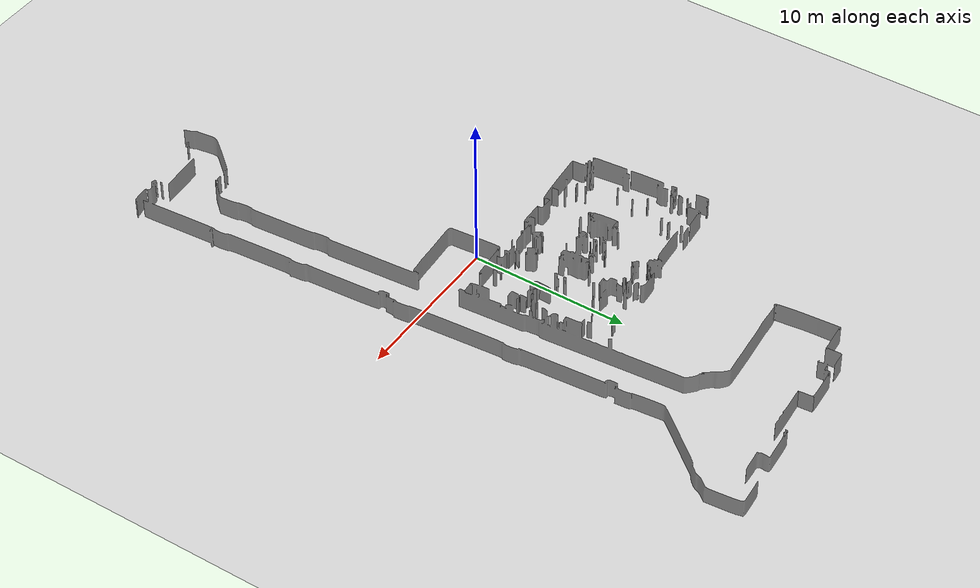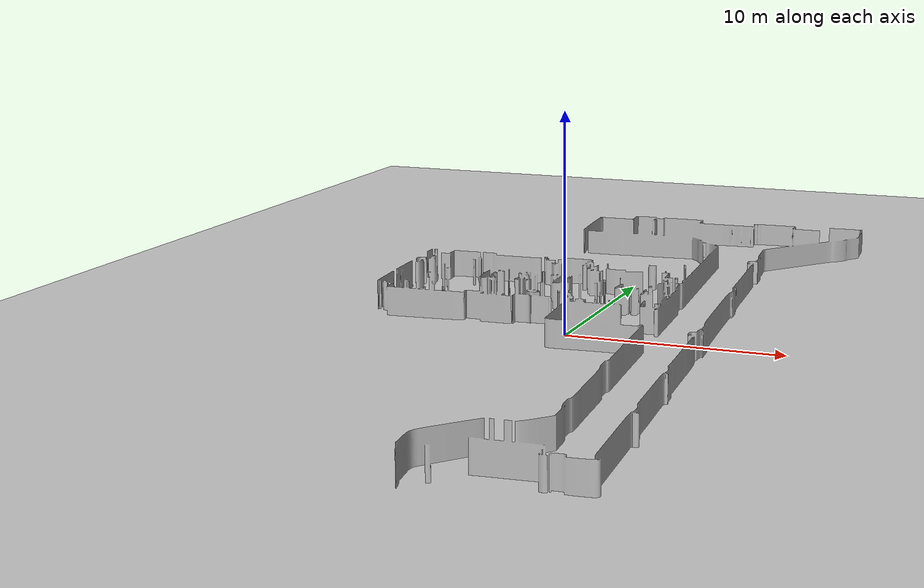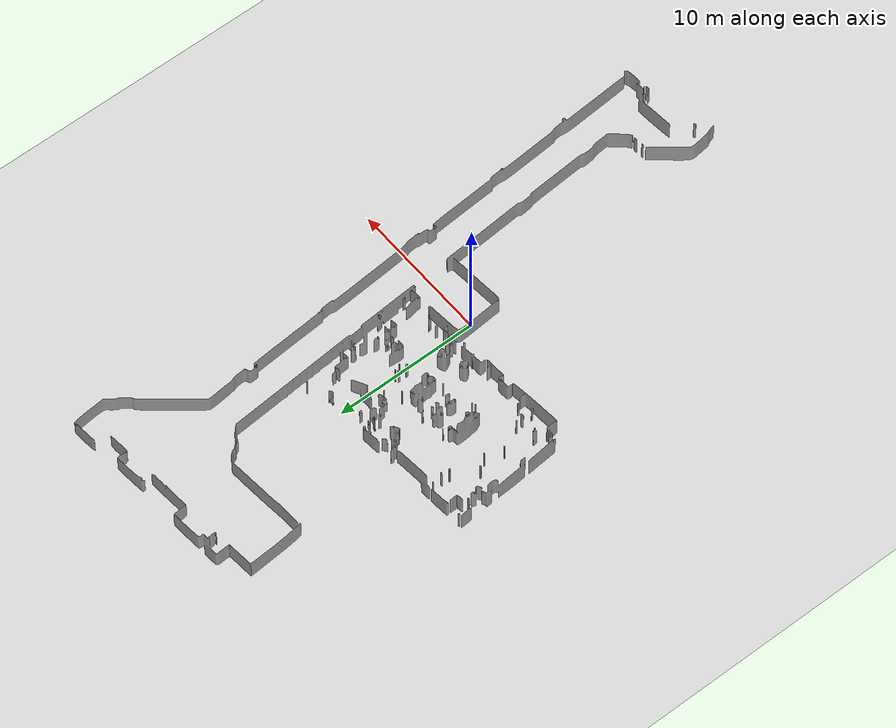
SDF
<?xml version="1.0"?>
<sdf version="1.6">
  <world name="empty_world">
    <physics name="1ms" type="ignored">
      <max_step_size>0.001</max_step_size>
      <real_time_factor>1.0</real_time_factor>
    </physics>
    <plugin filename="gz-sim-physics-system" name="gz::sim::systems::Physics"/>
    <plugin filename="gz-sim-user-commands-system" name="gz::sim::systems::UserCommands"/>
    <plugin filename="gz-sim-scene-broadcaster-system" name="gz::sim::systems::SceneBroadcaster"/>
    <plugin filename="gz-sim-sensors-system" name="gz::sim::systems::Sensors">
      <render_engine>ogre2</render_engine>
    </plugin>
    <plugin filename="gz-sim-contact-system" name="gz::sim::systems::Contact"/>
    <light type="directional" name="sun">
      <cast_shadows>true</cast_shadows>
      <pose>0 0 10 0 0 0</pose>
      <diffuse>0.8 0.8 0.8 1</diffuse>
      <specular>0.2 0.2 0.2 1</specular>
      <attenuation>
        <range>1000</range>
        <constant>0.9</constant>
        <linear>0.01</linear>
        <quadratic>0.001</quadratic>
      </attenuation>
      <direction>-0.5 0.1 -0.9</direction>
    </light>
    <model name="ground_plane">
      <static>true</static>
      <link name="link">
        <collision name="collision">
          <geometry>
            <plane>
              <normal>0 0 1</normal>
              <size>100 100</size>
            </plane>
          </geometry>
        </collision>
        <visual name="visual">
          <geometry>
            <plane>
              <normal>0 0 1</normal>
              <size>100 100</size>
            </plane>
          </geometry>
          <material>
            <ambient>0.8 0.8 0.8 1</ambient>
            <diffuse>0.8 0.8 0.8 1</diffuse>
            <specular>0.8 0.8 0.8 1</specular>
          </material>
        </visual>
      </link>
    </model>
    <model name="office_mesh">
      <static>true</static>
      <pose>-1 0.5 0 0 0 0.085</pose>
      <link name="world_link">
        <visual name="visual">
          <geometry>
            <mesh>
              <uri>office.stl</uri>
              <scale>190 190 190</scale>
            </mesh>
          </geometry>
        </visual>
        <collision name="collision">
          <geometry>
            <mesh>
              <uri>office.stl</uri>
              <scale>190 190 190</scale>
            </mesh>
          </geometry>
        </collision>
      </link>
    </model>
  </world>
</sdf>
